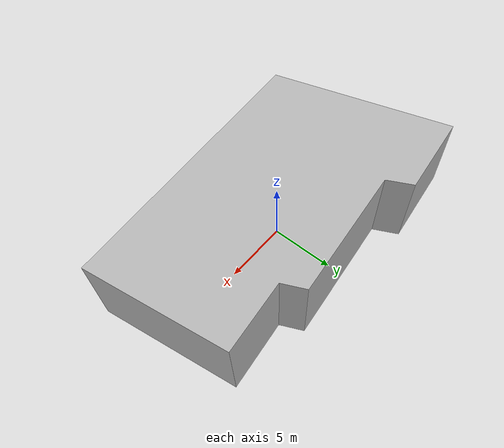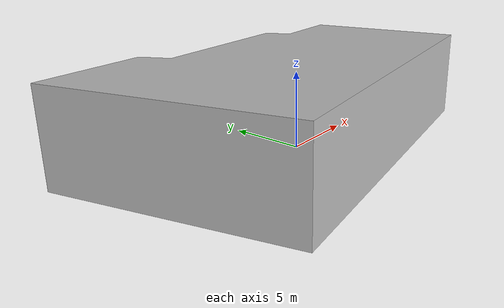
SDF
<?xml version="1.0" ?>
<sdf version="1.7">
  <model name="building_1619_assumed_a_junta_de_freguesia">
    <static>true</static>
    <link name="building_link">
      <visual name="building_visual">
        <geometry>
          <mesh>
            <uri>model://building_1619_assumed_a_junta_de_freguesia/meshes/construction_1619_assumed_A_Junta_de_freguesia_h6m.obj</uri>
          </mesh>
        </geometry>
      </visual>
    <collision name="building_collision">
      <geometry>
        <mesh>
          <uri>model://building_1619_assumed_a_junta_de_freguesia/meshes/construction_1619_assumed_A_Junta_de_freguesia_h6m.obj</uri>
        </mesh>
      </geometry>
    </collision>
    </link>
  </model>
</sdf>
